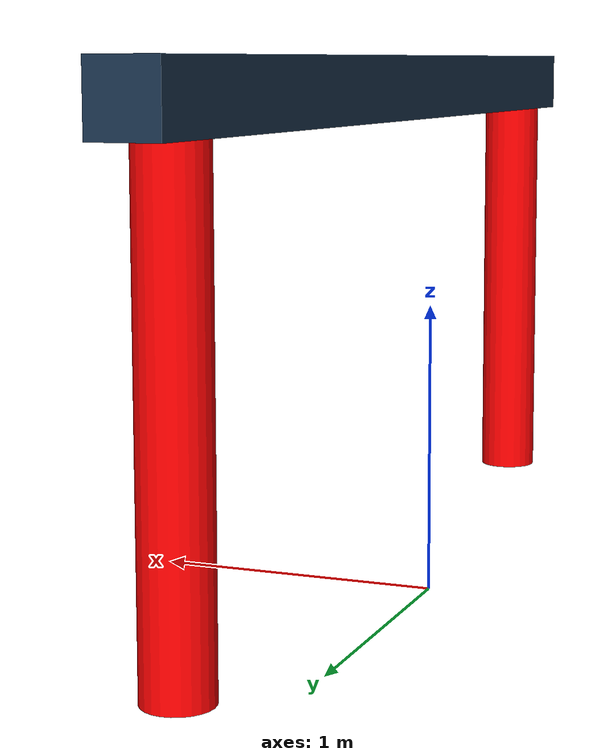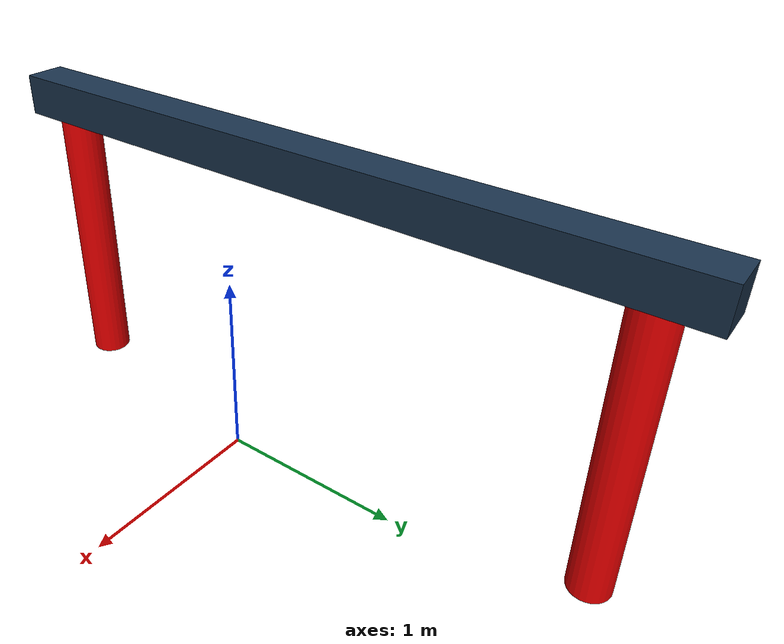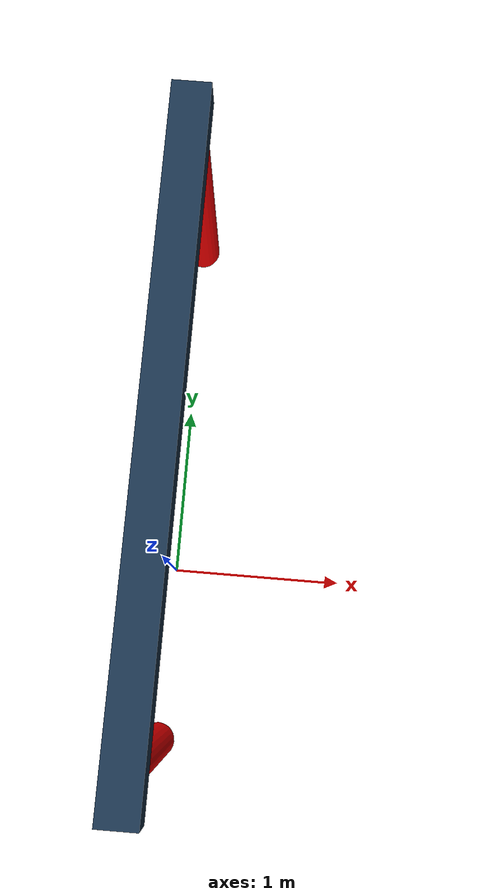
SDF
<?xml version='1.0'?>
<sdf version='1.6'>
  <model name='test_gate'>
    <link name='link_15'>
      <pose frame=''>0 -1 0 0 -0 0</pose>
      <visual name='visual'>
        <pose frame=''>0 0 1 0 -0 0</pose>
        <geometry>
          <cylinder>
            <radius>0.1</radius>
            <length>1.5</length>
          </cylinder>
        </geometry>
        <material>
          <lighting>1</lighting>
          <script>
            <uri>file://media/materials/scripts/gazebo.material</uri>
            <name>Gazebo/Grey</name>
          </script>
          <ambient>1 0 0 1</ambient>
          <diffuse>1 0 0 1</diffuse>
          <specular>1 0 0 1</specular>
          <emissive>0 0 0 1</emissive>
          <shader type='vertex'>
            <normal_map>__default__</normal_map>
          </shader>
        </material>
        <cast_shadows>1</cast_shadows>
        <transparency>0</transparency>
      </visual>
      <collision name='collision'>
        <laser_retro>0</laser_retro>
        <max_contacts>10</max_contacts>
        <pose frame=''>0 0 0 0 -0 0</pose>
        <geometry>
          <cylinder>
            <radius>0.1</radius>
            <length>1.5</length>
          </cylinder>
        </geometry>
      </collision>
    </link>
    <link name='link_16'>
      <pose frame=''>0 2 0 0 -0 0</pose>
      <visual name='visual'>
        <pose frame=''>0 0 1 0 -0 0</pose>
        <geometry>
          <cylinder>
            <radius>0.1</radius>
            <length>1.5</length>
          </cylinder>
        </geometry>
        <material>
          <lighting>1</lighting>
          <script>
            <uri>file://media/materials/scripts/gazebo.material</uri>
            <name>Gazebo/Grey</name>
          </script>
          <ambient>1 0 0 1</ambient>
          <diffuse>1 0 0 1</diffuse>
          <specular>1 0.01 0 1</specular>
          <emissive>0 0 0 1</emissive>
          <shader type='vertex'>
            <normal_map>__default__</normal_map>
          </shader>
        </material>
        <cast_shadows>1</cast_shadows>
        <transparency>0</transparency>
      </visual>
      <collision name='collision'>
        <laser_retro>0</laser_retro>
        <max_contacts>10</max_contacts>
        <pose frame=''>0 0 1 0 -0 0</pose>
        <geometry>
          <cylinder>
            <radius>0.1</radius>
            <length>1.5</length>
          </cylinder>
        </geometry>
      </collision>
    </link>
    <link name='link_17'>
      <pose frame=''>0 -1 0 0 -0 0</pose>
      <visual name='visual'>
        <pose frame=''>0 1.5 1.75 0 -0 0</pose>
        <geometry>
          <box>
            <size>0.2 3.5 0.2</size>
          </box>
        </geometry>
        <material>
          <lighting>1</lighting>
          <script>
            <uri>file://media/materials/scripts/gazebo.material</uri>
            <name>Gazebo/Grey</name>
          </script>
          <ambient>0.1 0.2 0.3 1</ambient>
          <diffuse>0.1 0.2 0.3 1</diffuse>
          <specular>0.1 0.2 0.3 1</specular>
          <emissive>0 0 0 1</emissive>
          <shader type='vertex'>
            <normal_map>__default__</normal_map>
          </shader>
        </material>
        <cast_shadows>1</cast_shadows>
        <transparency>0</transparency>
      </visual>
      <collision name='collision'>
        <laser_retro>0</laser_retro>
        <max_contacts>10</max_contacts>
        <pose frame=''>0 1.5 1.75 0 -0 0</pose>
        <geometry>
          <box>
            <size>0.2 3.5 0.2</size>
          </box>
        </geometry>
      </collision>
    </link>
    <joint name='link_16_JOINT_5' type='fixed'>
      <parent>link_17</parent>
      <child>link_16</child>
      <pose frame=''>0 0 0 0 -0 0</pose>
      <physics>
        <ode>
          <limit>
            <cfm>0</cfm>
            <erp>0.2</erp>
          </limit>
          <suspension>
            <cfm>0</cfm>
            <erp>0.2</erp>
          </suspension>
        </ode>
      </physics>
    </joint>
    <joint name='link_17_JOINT_6' type='fixed'>
      <parent>link_17</parent>
      <child>link_15</child>
      <pose frame=''>0 0 0 0 -0 0</pose>
      <physics>
        <ode>
          <limit>
            <cfm>0</cfm>
            <erp>0.2</erp>
          </limit>
          <suspension>
            <cfm>0</cfm>
            <erp>0.2</erp>
          </suspension>
        </ode>
      </physics>
    </joint>
    <static>1</static>
  </model>
</sdf>
